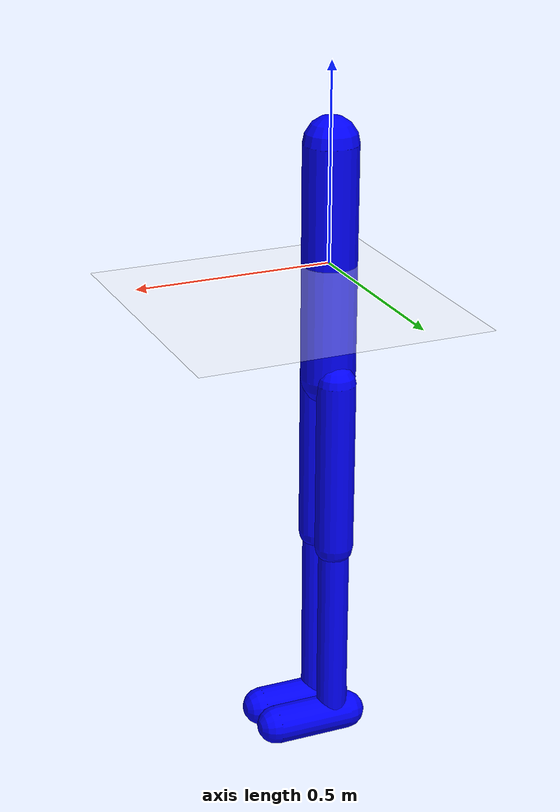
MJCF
<mujoco model="planar walker">
  <include file="common/materials.xml"/>

  <option timestep="0.005" iterations="2" ls_iterations="5">
    <flag eulerdamp="disable"/>
  </option>

  <custom>
    <numeric data="4" name="max_contact_points"/>
    <numeric data="4" name="max_geom_pairs"/>
  </custom>

  <statistic extent="2" center="0 0 1"/>

  <default>
    <joint damping=".1" armature="0.01" limited="true" solimplimit="0 .99 .01"/>
    <geom contype="0" conaffinity="0" friction=".7 .1 .1"/>
    <motor ctrllimited="false"/>
    <site size="0.01"/>
    <default class="walker">
      <geom material="self" type="capsule"/>
      <joint axis="0 -1 0"/>
    </default>
  </default>

  <asset>
    <texture type="skybox" builtin="gradient" rgb1="1 1 1" rgb2="1 1 1" width="800" height="800"/>
    <texture type="2d" name="groundplane" builtin="checker" mark="edge" rgb1="1 1 1" rgb2="1 1 1"
      markrgb="0 0 0" width="300" height="300"/>
    <material name="groundplane" texture="groundplane" texuniform="true" texrepeat="5 5" reflectance="0"/>
  </asset>

  <visual>
    <headlight diffuse=".8 .8 .8" ambient=".2 .2 .2" specular="1 1 1"/>
    <rgba force="1 0 0 1"/>
    <global azimuth="140" elevation="-20" offwidth="2560" offheight="2560"/>
    <map force="0.01"/>
    <scale forcewidth="0.3" contactwidth="0.5" contactheight="0.2"/>
    <quality shadowsize="8192"/>
  </visual>

  <worldbody>
    <geom name="floor" type="plane" conaffinity="1" pos="248 0 0" size="250 .8 .2" material="groundplane" zaxis="0 0 1"/>
    <camera name="side_fixed" pos="2.0 -4.5 2.5" euler="70 0 0"/>
    <light name="light" pos="0 0 4" dir="0 0 -1" specular=".2 .2 .2" diffuse=".5 .5 .5" exponent="0.5" ambient="0.2 0.2 0.2" mode="trackcom"/>

    <body name="torso" pos="0 0 0.0" childclass="walker">
      <camera name="track" pos="0 -2.6 0.6" euler="70 0 0" mode="trackcom"/>
      <camera name="back" pos="-2 0 .5" xyaxes="0 -1 0 1 0 3" mode="trackcom"/>
      <joint name="rootx" axis="1 0 0" type="slide" limited="false" armature="0" damping="0"/>
      <joint name="rootz" axis="0 0 1" type="slide" limited="false" armature="0" damping="0"/>
      <joint name="rooty" axis="0 1 0" type="hinge" limited="false" armature="0" damping="0"/>
      <geom name="torso" size="0.07 0.3"/>
      <body name="right_thigh" pos="0 -.05 -0.3">
        <joint name="right_hip" range="-20 100"/>
        <geom name="right_thigh" pos="0 0 -0.225" size="0.05 0.225"/>
        <body name="right_leg" pos="0 0 -0.7">
          <joint name="right_knee" pos="0 0 0.25" range="-150 0"/>
          <geom name="right_leg" size="0.04 0.25"/>
          <body name="right_foot" pos="0.06 0 -0.25">
            <joint name="right_ankle" pos="-0.06 0 0" range="-45 45"/>
            <geom name="right_foot" zaxis="1 0 0" size="0.05 0.1"/>
          </body>
        </body>
      </body>
      <body name="left_thigh" pos="0 .05 -0.3" >
        <joint name="left_hip" range="-20 100"/>
        <geom name="left_thigh" pos="0 0 -0.225" size="0.05 0.225"/>
        <body name="left_leg" pos="0 0 -0.7">
          <joint name="left_knee" pos="0 0 0.25" range="-150 0"/>
          <geom name="left_leg" size="0.04 0.25"/>
          <body name="left_foot" pos="0.06 0 -0.25">
            <joint name="left_ankle" pos="-0.06 0 0" range="-45 45"/>
            <geom name="left_foot" zaxis="1 0 0" size="0.05 0.1"/>
          </body>
        </body>
      </body>
    </body>
  </worldbody>

  <contact>
    <pair name="lf_floor" geom1="right_foot" geom2="floor" condim="3" friction="0.7 0.7"/>
    <pair name="rf_floor" geom1="left_foot"  geom2="floor" condim="3" friction="0.7 0.7"/>
  </contact>

  <sensor>
    <subtreelinvel name="torso_subtreelinvel" body="torso"/>
  </sensor>

  <actuator>
    <motor name="right_hip" joint="right_hip" gear="100"/>
    <motor name="right_knee" joint="right_knee" gear="50"/>
    <motor name="right_ankle" joint="right_ankle" gear="20"/>
    <motor name="left_hip" joint="left_hip" gear="100"/>
    <motor name="left_knee" joint="left_knee" gear="50"/>
    <motor name="left_ankle" joint="left_ankle" gear="20"/>
  </actuator>
</mujoco>

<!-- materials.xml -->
<!--
Common textures, colors and materials to be used throughout this suite. Some
materials such as xxx_highlight are activated on occurence of certain events,
for example receiving a positive reward.
-->
<mujoco>
  <asset>
    <texture name="grid" type="2d" builtin="checker" rgb1=".1 .2 .3" rgb2=".2 .3 .4" width="300" height="300" mark="edge" markrgb=".2 .3 .4"/>
    <material name="grid" texture="grid" texrepeat="1 1" texuniform="true" reflectance=".2"/>
    <material name="self" rgba="0 0 1 1"/>
    <material name="self_default" rgba=".7 .5 .3 1"/>
    <material name="self_highlight" rgba="0 .5 .3 1"/>
    <material name="effector" rgba=".7 .4 .2 1"/>
    <material name="effector_default" rgba=".7 .4 .2 1"/>
    <material name="effector_highlight" rgba="0 .5 .3 1"/>
    <material name="decoration" rgba=".3 .5 .7 1"/>
    <material name="eye" rgba="0 .2 1 1"/>
    <material name="target" rgba=".6 .3 .3 1"/>
    <material name="target_default" rgba=".6 .3 .3 1"/>
    <material name="target_highlight" rgba=".6 .3 .3 .4"/>
    <material name="site" rgba=".5 .5 .5 .3"/>
  </asset>
</mujoco>
